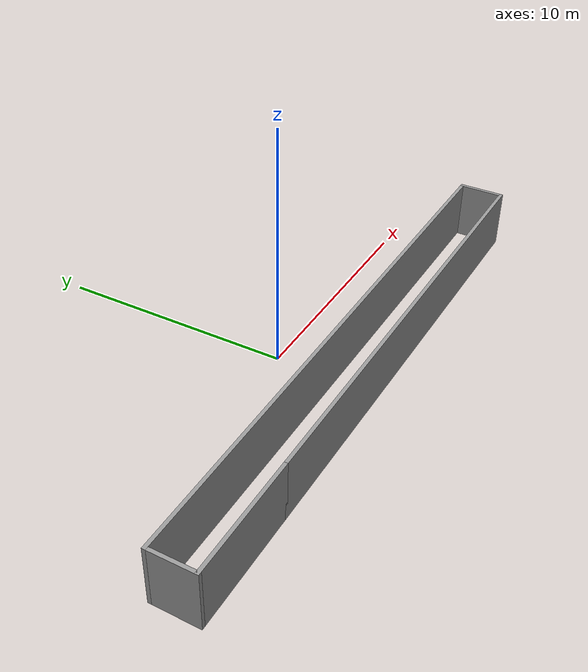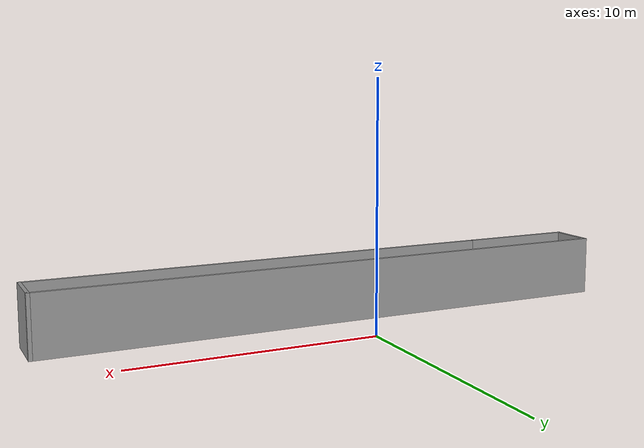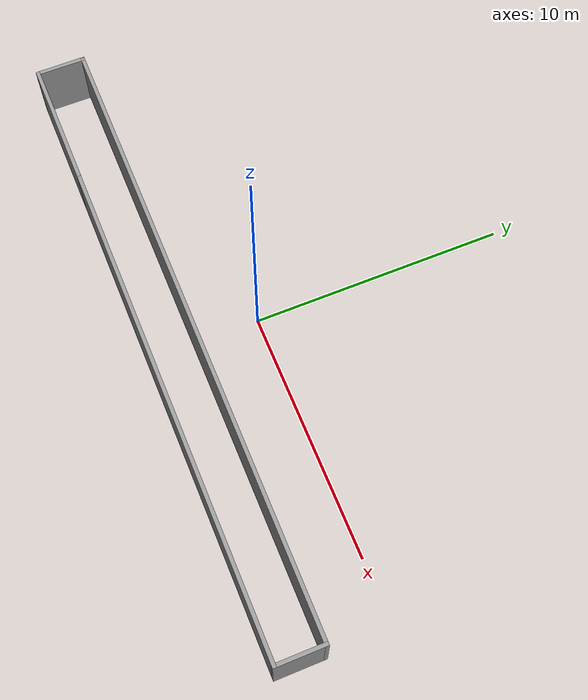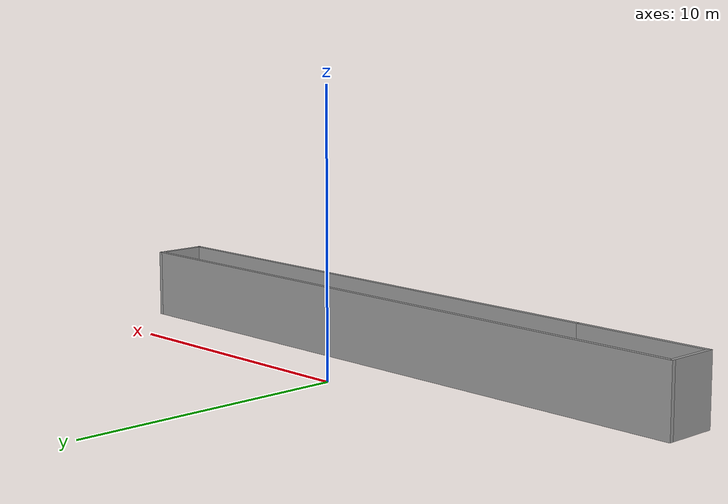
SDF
<?xml version='1.0'?>
<sdf version='1.6'>
  <model name='korytarz'>
    <pose frame=''>0.223685 -2.24506 0 0 -0 0</pose>
    <link name='Wall_0'>
      <collision name='Wall_0_Collision'>
        <geometry>
          <box>
            <size>20 0.15 2.5</size>
          </box>
        </geometry>
        <pose frame=''>0 0 1.25 0 -0 0</pose>
      </collision>
      <visual name='Wall_0_Visual'>
        <pose frame=''>0 0 1.25 0 -0 0</pose>
        <geometry>
          <box>
            <size>20 0.15 2.5</size>
          </box>
        </geometry>
        <material>
          <script>
            <uri>file://media/materials/scripts/gazebo.material</uri>
            <name>Gazebo/Grey</name>
          </script>
          <ambient>1 1 1 1</ambient>
        </material>
        <meta>
          <layer>0</layer>
        </meta>
      </visual>
      <pose frame=''>2.5 -2.17006 0 0 -0 0</pose>
    </link>
    <link name='Wall_1'>
      <collision name='Wall_1_Collision'>
        <geometry>
          <box>
            <size>2 0.15 2.5</size>
          </box>
        </geometry>
        <pose frame=''>0 0 1.25 0 -0 0</pose>
      </collision>
      <visual name='Wall_1_Visual'>
        <pose frame=''>0 0 1.25 0 -0 0</pose>
        <geometry>
          <box>
            <size>2 0.15 2.5</size>
          </box>
        </geometry>
        <material>
          <script>
            <uri>file://media/materials/scripts/gazebo.material</uri>
            <name>Gazebo/Grey</name>
          </script>
          <ambient>1 1 1 1</ambient>
        </material>
        <meta>
          <layer>0</layer>
        </meta>
      </visual>
      <pose frame=''>12.425 -1.24506 0 0 -0 1.5708</pose>
    </link>
    <link name='Wall_2'>
      <collision name='Wall_2_Collision'>
        <geometry>
          <box>
            <size>25 0.15 2.5</size>
          </box>
        </geometry>
        <pose frame=''>0 0 1.25 0 -0 0</pose>
      </collision>
      <visual name='Wall_2_Visual'>
        <pose frame=''>0 0 1.25 0 -0 0</pose>
        <geometry>
          <box>
            <size>25 0.15 2.5</size>
          </box>
        </geometry>
        <material>
          <script>
            <uri>file://media/materials/scripts/gazebo.material</uri>
            <name>Gazebo/Grey</name>
          </script>
          <ambient>1 1 1 1</ambient>
        </material>
        <meta>
          <layer>0</layer>
        </meta>
      </visual>
      <pose frame=''>-0 -0.320058 0 0 -0 3.14159</pose>
    </link>
    <link name='Wall_3'>
      <collision name='Wall_3_Collision'>
        <geometry>
          <box>
            <size>2 0.15 2.5</size>
          </box>
        </geometry>
        <pose frame=''>0 0 1.25 0 -0 0</pose>
      </collision>
      <visual name='Wall_3_Visual'>
        <pose frame=''>0 0 1.25 0 -0 0</pose>
        <geometry>
          <box>
            <size>2 0.15 2.5</size>
          </box>
        </geometry>
        <material>
          <script>
            <uri>file://media/materials/scripts/gazebo.material</uri>
            <name>Gazebo/Grey</name>
          </script>
          <ambient>1 1 1 1</ambient>
        </material>
        <meta>
          <layer>0</layer>
        </meta>
      </visual>
      <pose frame=''>-12.425 -1.24506 0 0 -0 -1.5708</pose>
    </link>
    <link name='Wall_4'>
      <collision name='Wall_4_Collision'>
        <geometry>
          <box>
            <size>5.15 0.15 2.5</size>
          </box>
        </geometry>
        <pose frame=''>0 0 1.25 0 -0 0</pose>
      </collision>
      <visual name='Wall_4_Visual'>
        <pose frame=''>0 0 1.25 0 -0 0</pose>
        <geometry>
          <box>
            <size>5.15 0.15 2.5</size>
          </box>
        </geometry>
        <material>
          <script>
            <uri>file://media/materials/scripts/gazebo.material</uri>
            <name>Gazebo/Grey</name>
          </script>
          <ambient>1 1 1 1</ambient>
        </material>
        <meta>
          <layer>0</layer>
        </meta>
      </visual>
      <pose frame=''>-9.925 -2.17006 0 0 -0 0</pose>
    </link>
    <static>1</static>
  </model>
</sdf>
